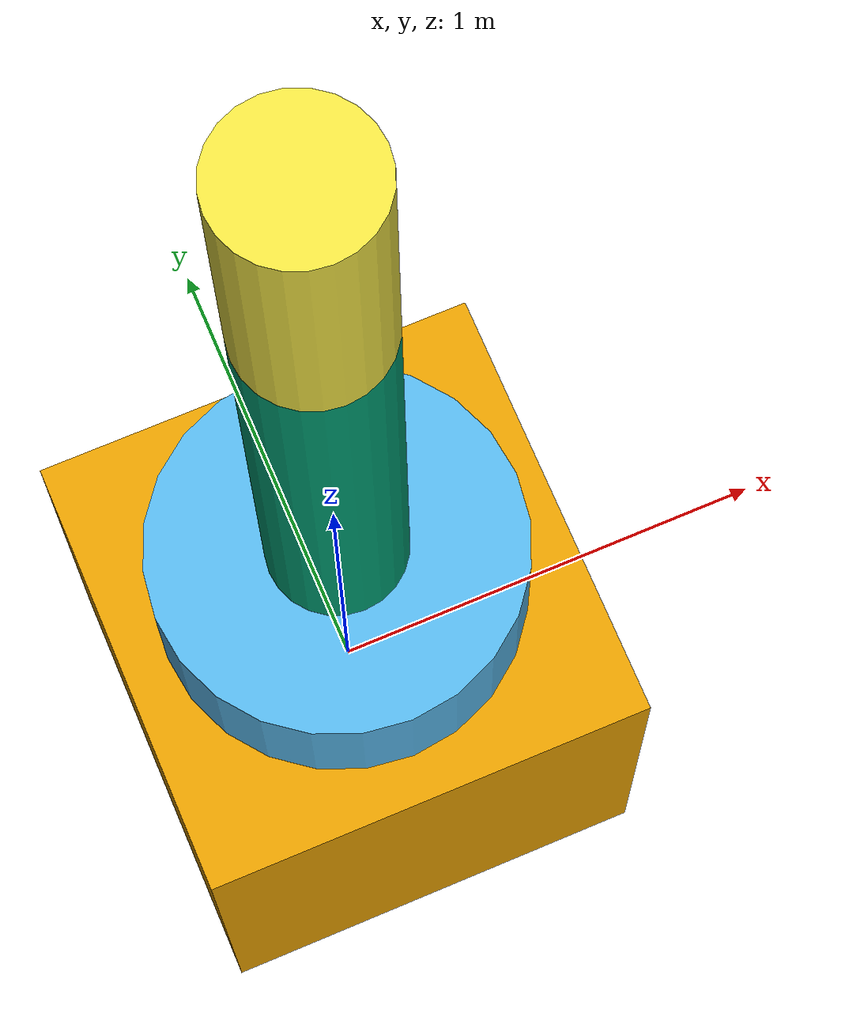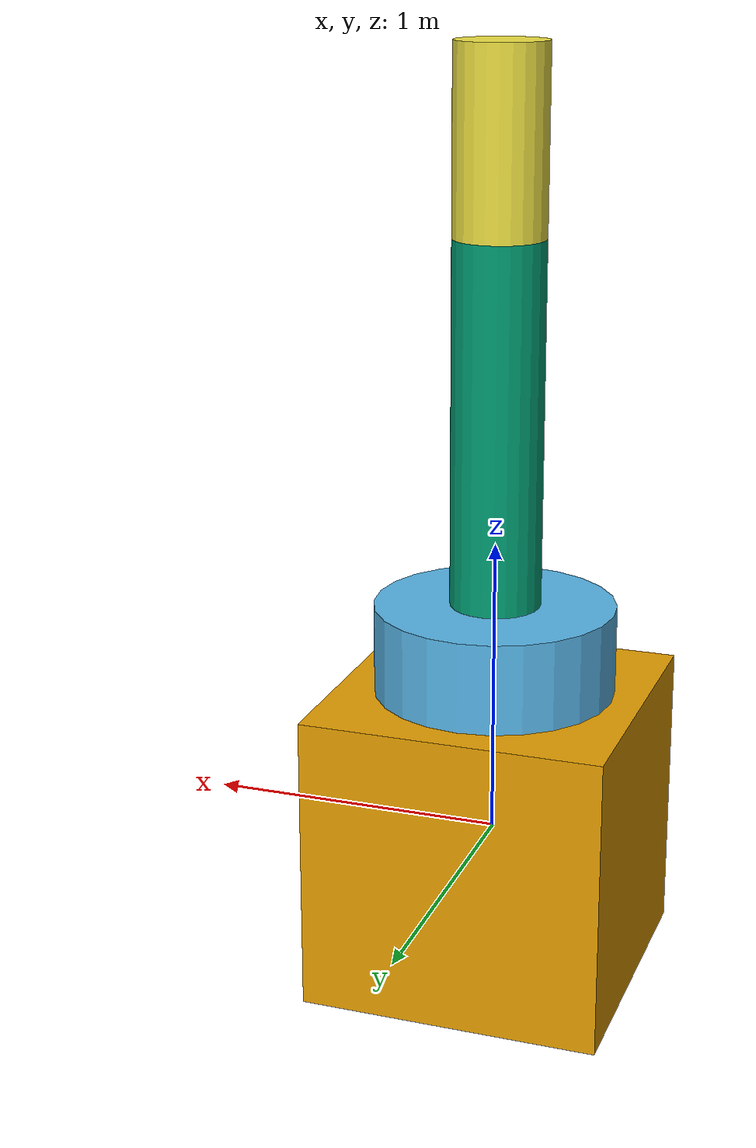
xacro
<?xml version="1.0"?>

<robot name="my_manipulator" xmlns:xacro="http://www.ros.org/wiki/xacro">

	<xacro:include filename="$(find manipulator)/urdf/wzorzec.xacro" />

	<my_link_box name="base_link" origin_rpy="0 0 0" origin_xyz="0 0 0" size="1 1 1" />

	<joint name="base_link__link_01" type="revolute">
		<axis xyz="0 0 1"/>
			<limit effort = "1000.0" lower = "-3.14" upper = "3.14" velocity = "0.5"/>
			<origin rpy = "0 0 0" xyz = "0 0 0.5"/>
			<parent link = "base_link"/>
			<child link = "link_01"/>
	</joint>

	<link name="link_01">
		<visual>
			<origin rpy="0 0 0" xyz="0 0 0.15"/>
				<geometry>
					<cylinder radius="0.4" length="0.3"/>
				</geometry>
		</visual>
	</link>

	<joint name="link01__link_02" type="revolute">
				<axis xyz="0 1 0"/>
				<limit effort = "1000.0" lower = "-3.14" upper = "3.14" velocity = "0.5"/>
				<origin rpy = "0 0 0" xyz = "0 0 0.3"/>
				<parent link = "link_01"/>
				<child link = "link_02"/>
	</joint>

	<link name="link_02">
		<visual>
			<origin rpy="0 0 0" xyz="0 0 0.6"/>
				<geometry>
					<cylinder radius="0.15" length="1.2"/>
				</geometry>
		</visual>
	</link>

	<joint name="link02__link_03" type="revolute">
			<axis xyz="0 1 0"/>
				<limit effort = "1000.0" lower = "-3.14" upper = "3.14" velocity = "0.5"/>
				<origin rpy = "0 0 0" xyz = "0 0 1.2"/>
				<parent link = "link_02"/>
				<child link = "link_03"/>
	</joint>

	<link name="link_03">
		<visual>
			<origin rpy="0 0 0" xyz="0 0 0.3"/>
				<geometry>
					<cylinder radius="0.15" length="0.6"/>
				</geometry>
		</visual>
	</link>

</robot>

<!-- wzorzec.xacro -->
<robot xmlns:xacro="http://www.ros.org/wiki/xacro">

	<xacro:include filename="$(find manipulator)/urdf/constants.xacro" />

	<xacro:macro name="my_link_box" params="name origin_xyz origin_rpy size">
		<link name="${name}">
			<visual>
				<origin xyz="${origin_xyz}" rpy="${origin_rpy}"/>
				<geometry>
					<box size="${size}"/>
				</geometry>
			</visual>
		</link>
	</xacro:macro>

	 <xacro:macro name="my_link_cylinder" params="name origin_xyz origin_rpy radius length">
    <link name="${name}">
    <visual>
        <origin rpy="${origin_rpy}" xyz="${origin_xyz}" />
        <geometry>
          <cylinder radius="${radius}" length="${length}" />
        </geometry>
      </visual>
    </link>
  </xacro:macro>

	<xacro:macro name="my_joint" params="name type origin_rpy origin_xyz parent child">
		<joint name="${name}" type="${type}">
			<axis xyz="0 0 1"/>
			<limit effort="${limit_effort}" lower="${limit_lower}" upper="${limit_upper}" velocity="${limit_velocity}"/>
			<origin xyz = "${origin_xyz}" rpy="${origin_rpy}"/>
			<parent link = "${parent}"/>
			<child link = "${child}"/>
		</joint>
	</xacro:macro>
</robot>
